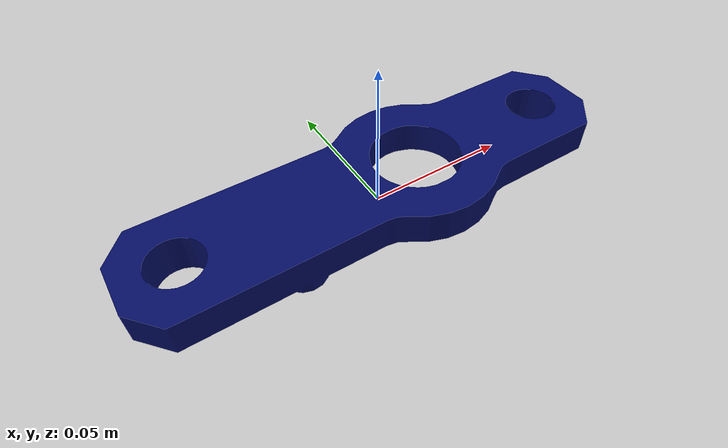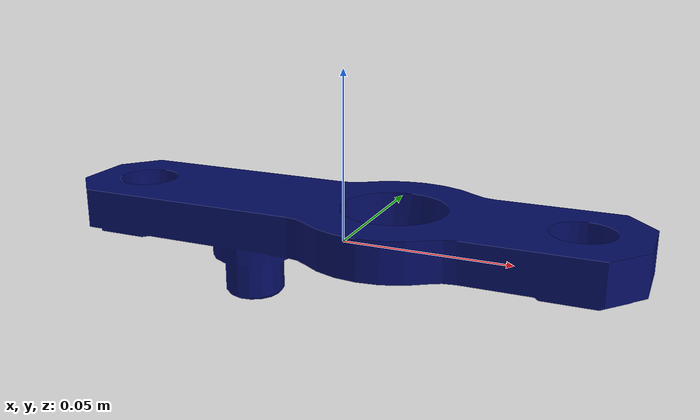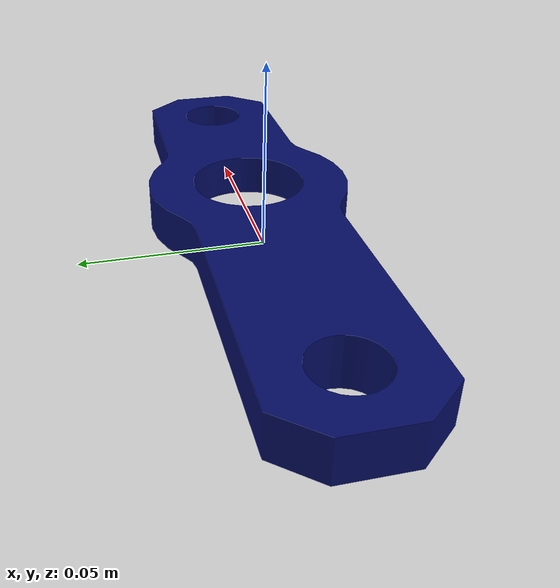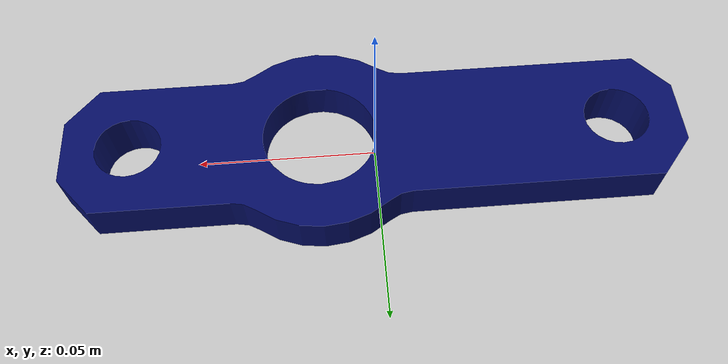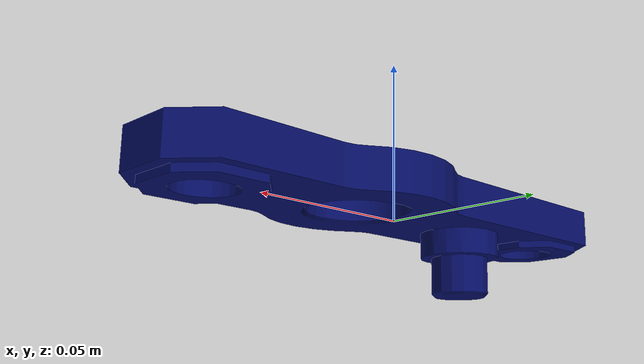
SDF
<?xml version="1.0" ?>
<sdf version='1.4'>
  <model name="gearbox_top_blue">
      <static>0</static>
      <link name='link'>
        <inertial>
          <pose>0 0 0 0 0 0</pose>
          <mass>0.2282587</mass>
          <inertia>
            <ixx>4.84526132205e-05</ixx>
            <ixy>0.000000</ixy>
            <ixz>0.000000</ixz>
            <iyy>0.000571913204992</iyy>
            <iyz>0.000000</iyz>
            <izz>0.000580776512074</izz>
          </inertia>
        </inertial>
        <collision name='collision'>
          <geometry>
            <mesh>
              <uri>model://gearbox_top_blue/meshes/gearBoxTop_v3.stl</uri>
              <scale>1 1 1</scale>
            </mesh>
          </geometry>
          <surface>
            <friction>
              <ode>
                <mu>30.0</mu>
                <mu2>30.0</mu2>
              </ode>
            </friction>
          </surface>
        </collision>
        <visual name='visual'>
          <geometry>
            <mesh>
              <uri>model://gearbox_top_blue/meshes/gearBoxTop_blue.dae</uri>
              <scale>1 1 1</scale>
            </mesh>
          </geometry>
        </visual>
        <velocity_decay>
          <linear>0.000000</linear>
          <angular>0.000000</angular>
        </velocity_decay>
        <self_collide>0</self_collide>
        <kinematic>0</kinematic>
        <gravity>1</gravity>
      </link>
  </model>
</sdf>
